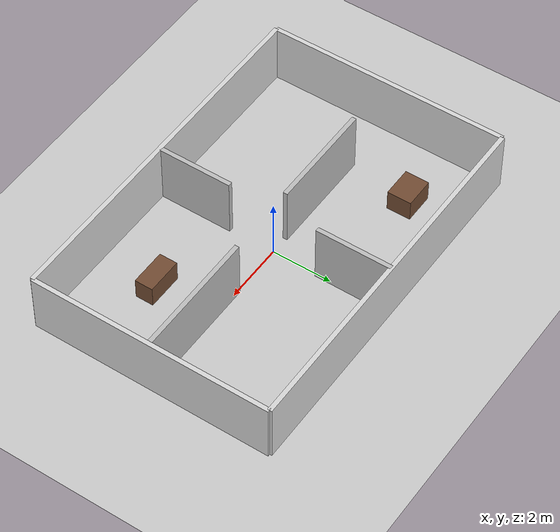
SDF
<?xml version="1.0" ?>
<sdf version="1.7">
  <world name="empty">
    <physics name="1ms" type="ignored">
      <max_step_size>0.001</max_step_size>
      <real_time_factor>1.0</real_time_factor>
    </physics>

    <!-- Ground plane with higher friction to prevent sliding -->
    <model name="ground_plane">
      <static>true</static>
      <link name="link">
        <collision name="collision">
          <geometry>
            <plane>
              <normal>0 0 1</normal>
              <size>100 100</size>
            </plane>
          </geometry>
          <surface>
            <friction>
              <ode>
                <mu>5.0</mu>
                <mu2>5.0</mu2>
              </ode>
            </friction>
          </surface>
        </collision>
        <visual name="visual">
          <geometry>
            <plane>
              <normal>0 0 1</normal>
              <size>100 100</size>
            </plane>
          </geometry>
        </visual>
      </link>
    </model>

    <plugin name="gz::sim::systems::Physics" filename="gz-sim-physics-system"/>
    <plugin name="gz::sim::systems::UserCommands" filename="gz-sim-user-commands-system"/>
    <plugin name="gz::sim::systems::SceneBroadcaster" filename="gz-sim-scene-broadcaster-system"/>
    <plugin name="gz::sim::systems::Sensors" filename="gz-sim-sensors-system">
      <render_engine>ogre2</render_engine>
    </plugin>
    <plugin name="gz::sim::systems::Imu" filename="gz-sim-imu-system"/>

    <!-- Building outer wall: north -->
    <model name="wall_north">
      <static>true</static>
      <pose>0 4 1 0 0 0</pose>
      <link name="link">
        <collision name="collision">
          <geometry>
            <box><size>12 0.15 2.0</size></box>
          </geometry>
        </collision>
        <visual name="visual">
          <geometry>
            <box><size>12 0.15 2.0</size></box>
          </geometry>
          <material>
            <ambient>0.85 0.85 0.85 1</ambient>
            <diffuse>0.85 0.85 0.85 1</diffuse>
            <specular>0.20 0.20 0.20 1</specular>
          </material>
        </visual>
      </link>
    </model>

    <!-- Building outer wall: south -->
    <model name="wall_south">
      <static>true</static>
      <pose>0 -4 1 0 0 0</pose>
      <link name="link">
        <collision name="collision">
          <geometry>
            <box><size>12 0.15 2.0</size></box>
          </geometry>
        </collision>
        <visual name="visual">
          <geometry>
            <box><size>12 0.15 2.0</size></box>
          </geometry>
          <material>
            <ambient>0.85 0.85 0.85 1</ambient>
            <diffuse>0.85 0.85 0.85 1</diffuse>
            <specular>0.20 0.20 0.20 1</specular>
          </material>
        </visual>
      </link>
    </model>

    <!-- Building outer wall: east -->
    <model name="wall_east">
      <static>true</static>
      <pose>6 0 1 0 0 0</pose>
      <link name="link">
        <collision name="collision">
          <geometry>
            <box><size>0.15 8 2.0</size></box>
          </geometry>
        </collision>
        <visual name="visual">
          <geometry>
            <box><size>0.15 8 2.0</size></box>
          </geometry>
          <material>
            <ambient>0.85 0.85 0.85 1</ambient>
            <diffuse>0.85 0.85 0.85 1</diffuse>
            <specular>0.20 0.20 0.20 1</specular>
          </material>
        </visual>
      </link>
    </model>

    <!-- Building outer wall: west -->
    <model name="wall_west">
      <static>true</static>
      <pose>-6 0 1 0 0 0</pose>
      <link name="link">
        <collision name="collision">
          <geometry>
            <box><size>0.15 8 2.0</size></box>
          </geometry>
        </collision>
        <visual name="visual">
          <geometry>
            <box><size>0.15 8 2.0</size></box>
          </geometry>
          <material>
            <ambient>0.85 0.85 0.85 1</ambient>
            <diffuse>0.85 0.85 0.85 1</diffuse>
            <specular>0.20 0.20 0.20 1</specular>
          </material>
        </visual>
      </link>
    </model>

    <!-- Inner wall (vertical), split to create a central doorway -->
    <model name="wall_inner_v_top">
      <static>true</static>
      <pose>0 2.75 1 0 0 0</pose>
      <link name="link">
        <collision name="collision">
          <geometry>
            <box><size>0.15 2.5 2.0</size></box>
          </geometry>
        </collision>
        <visual name="visual">
          <geometry>
            <box><size>0.15 2.5 2.0</size></box>
          </geometry>
          <material>
            <ambient>0.75 0.75 0.75 1</ambient>
            <diffuse>0.75 0.75 0.75 1</diffuse>
            <specular>0.15 0.15 0.15 1</specular>
          </material>
        </visual>
      </link>
    </model>

    <model name="wall_inner_v_bottom">
      <static>true</static>
      <pose>0 -2.75 1 0 0 0</pose>
      <link name="link">
        <collision name="collision">
          <geometry>
            <box><size>0.15 2.5 2.0</size></box>
          </geometry>
        </collision>
        <visual name="visual">
          <geometry>
            <box><size>0.15 2.5 2.0</size></box>
          </geometry>
          <material>
            <ambient>0.75 0.75 0.75 1</ambient>
            <diffuse>0.75 0.75 0.75 1</diffuse>
            <specular>0.15 0.15 0.15 1</specular>
          </material>
        </visual>
      </link>
    </model>

    <!-- Inner wall (horizontal), split to create a doorway -->
    <model name="wall_inner_h_left">
      <static>true</static>
      <pose>-2.4 0 1 0 0 0</pose>
      <link name="link">
        <collision name="collision">
          <geometry>
            <box><size>3.6 0.15 2.0</size></box>
          </geometry>
        </collision>
        <visual name="visual">
          <geometry>
            <box><size>3.6 0.15 2.0</size></box>
          </geometry>
          <material>
            <ambient>0.75 0.75 0.75 1</ambient>
            <diffuse>0.75 0.75 0.75 1</diffuse>
            <specular>0.15 0.15 0.15 1</specular>
          </material>
        </visual>
      </link>
    </model>

    <model name="wall_inner_h_right">
      <static>true</static>
      <pose>3.9 0 1 0 0 0</pose>
      <link name="link">
        <collision name="collision">
          <geometry>
            <box><size>4.2 0.15 2.0</size></box>
          </geometry>
        </collision>
        <visual name="visual">
          <geometry>
            <box><size>4.2 0.15 2.0</size></box>
          </geometry>
          <material>
            <ambient>0.75 0.75 0.75 1</ambient>
            <diffuse>0.75 0.75 0.75 1</diffuse>
            <specular>0.15 0.15 0.15 1</specular>
          </material>
        </visual>
      </link>
    </model>

    <!-- Furniture-like obstacles -->
    <model name="obstacle_table_1">
      <static>true</static>
      <pose>-3.8 2.2 0.35 0 0 0</pose>
      <link name="link">
        <collision name="collision">
          <geometry>
            <box><size>1.0 0.8 0.7</size></box>
          </geometry>
        </collision>
        <visual name="visual">
          <geometry>
            <box><size>1.0 0.8 0.7</size></box>
          </geometry>
          <material>
            <ambient>0.45 0.30 0.20 1</ambient>
            <diffuse>0.45 0.30 0.20 1</diffuse>
            <specular>0.10 0.10 0.10 1</specular>
          </material>
        </visual>
      </link>
    </model>

    <model name="obstacle_table_2">
      <static>true</static>
      <pose>3.0 -2.0 0.35 0 0 0</pose>
      <link name="link">
        <collision name="collision">
          <geometry>
            <box><size>1.2 0.6 0.7</size></box>
          </geometry>
        </collision>
        <visual name="visual">
          <geometry>
            <box><size>1.2 0.6 0.7</size></box>
          </geometry>
          <material>
            <ambient>0.45 0.30 0.20 1</ambient>
            <diffuse>0.45 0.30 0.20 1</diffuse>
            <specular>0.10 0.10 0.10 1</specular>
          </material>
        </visual>
      </link>
    </model>

  </world>
</sdf>
